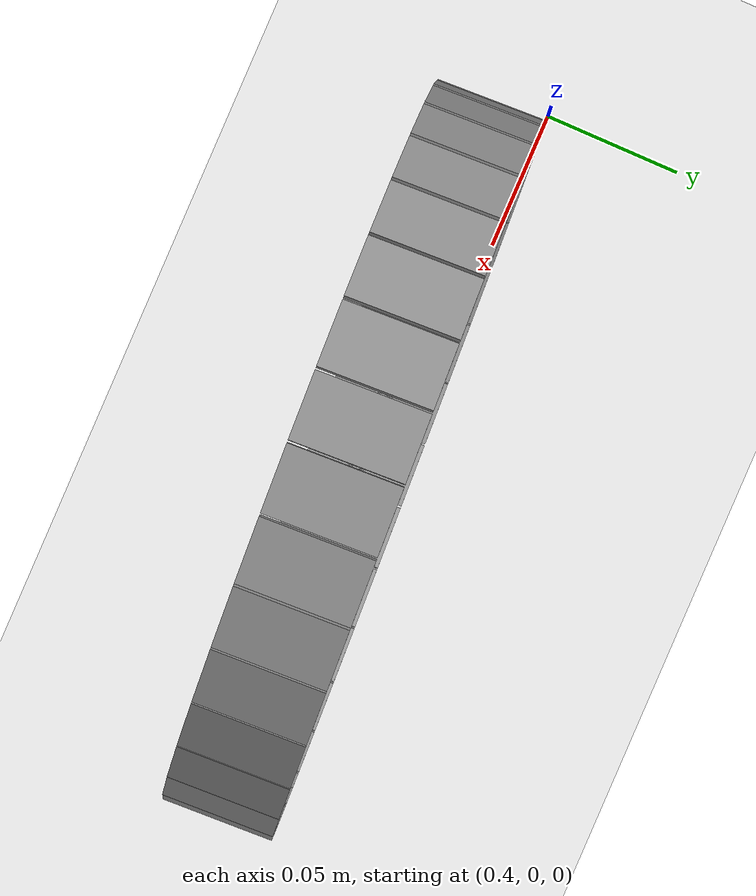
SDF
<sdf version="1.6">
 <world name="default">
  <model name="ground_plane">
   <static>1</static>
   <link name="link">
    <collision name="collision">
     <geometry><plane><normal>0 0 1</normal><size>100 100</size></plane></geometry>
     <surface><friction><ode><mu>100</mu><mu2>50</mu2></ode></friction></surface>
    </collision>
    <visual name="visual">
     <cast_shadows>0</cast_shadows>
     <geometry><plane><normal>0 0 1</normal><size>100 100</size></plane></geometry>
     <material>
      <script><uri>file://media/materials/scripts/gazebo.material</uri><name>Gazebo/Grey</name></script>
     </material>
    </visual>
   </link>
  </model>
  <model name="track_2">
   <static>0</static>
   <pose>0.539187 -0.014415 0.05516 -1.5696 0.043693 0.04388</pose>
   <link name="link_0">
    <pose>0.1309 0 0 -1.5708 0 1.5708</pose>
    <inertial>
     <mass>1</mass>
     <inertia>
      <ixx>0.166667</ixx>
      <ixy>0</ixy>
      <ixz>0</ixz>
      <iyy>0.166667</iyy>
      <iyz>0</iyz>
      <izz>0.166667</izz>
     </inertia>
    </inertial>
    <visual name="visual">
     <geometry><mesh><uri>model://track_thread/meshes/CP1.dae</uri><scale>1 1 1</scale></mesh></geometry>
     <material>
      <lighting>1</lighting>
      <script><uri>file://media/materials/scripts/gazebo.material</uri><name>Gazebo/Grey</name></script>
      <ambient>0.3 0.3 0.3 1</ambient>
      <diffuse>0.7 0.7 0.7 1</diffuse>
      <specular>0.01 0.01 0.01 1</specular>
      <emissive>0 0 0 1</emissive>
      <shader type="vertex"><normal_map>__default__</normal_map></shader>
     </material>
    </visual>
    <collision name="collision">
     <geometry><mesh><uri>model://track_thread/meshes/CP1.dae</uri><scale>1 1 1</scale></mesh></geometry>
    </collision>
   </link>
   <link name="link_1">
    <pose>0.1285 0.0248 0 -1.5708 -0 1.7612</pose>
    <inertial>
     <mass>1</mass>
     <inertia>
      <ixx>0.166667</ixx>
      <ixy>0</ixy>
      <ixz>0</ixz>
      <iyy>0.166667</iyy>
      <iyz>0</iyz>
      <izz>0.166667</izz>
     </inertia>
    </inertial>
    <visual name="visual">
     <geometry><mesh><uri>model://track_thread/meshes/CP1.dae</uri><scale>1 1 1</scale></mesh></geometry>
     <material>
      <lighting>1</lighting>
      <script><uri>file://media/materials/scripts/gazebo.material</uri><name>Gazebo/Grey</name></script>
      <ambient>0.3 0.3 0.3 1</ambient>
      <diffuse>0.7 0.7 0.7 1</diffuse>
      <specular>0.01 0.01 0.01 1</specular>
      <emissive>0 0 0 1</emissive>
      <shader type="vertex"><normal_map>__default__</normal_map></shader>
     </material>
    </visual>
    <collision name="collision">
     <geometry><mesh><uri>model://track_thread/meshes/CP1.dae</uri><scale>1 1 1</scale></mesh></geometry>
    </collision>
   </link>
   <link name="link_2">
    <pose>0.1215 0.0487 0 -1.5708 -0 1.9516</pose>
    <inertial>
     <mass>1</mass>
     <inertia>
      <ixx>0.166667</ixx>
      <ixy>0</ixy>
      <ixz>0</ixz>
      <iyy>0.166667</iyy>
      <iyz>0</iyz>
      <izz>0.166667</izz>
     </inertia>
    </inertial>
    <visual name="visual">
     <geometry><mesh><uri>model://track_thread/meshes/CP1.dae</uri><scale>1 1 1</scale></mesh></geometry>
     <material>
      <lighting>1</lighting>
      <script><uri>file://media/materials/scripts/gazebo.material</uri><name>Gazebo/Grey</name></script>
      <ambient>0.3 0.3 0.3 1</ambient>
      <diffuse>0.7 0.7 0.7 1</diffuse>
      <specular>0.01 0.01 0.01 1</specular>
      <emissive>0 0 0 1</emissive>
      <shader type="vertex"><normal_map>__default__</normal_map></shader>
     </material>
    </visual>
    <collision name="collision">
     <geometry><mesh><uri>model://track_thread/meshes/CP1.dae</uri><scale>1 1 1</scale></mesh></geometry>
    </collision>
   </link>
   <link name="link_3">
    <pose>0.1101 0.0708 0 -1.5708 -0 2.142</pose>
    <inertial>
     <mass>1</mass>
     <inertia>
      <ixx>0.166667</ixx>
      <ixy>0</ixy>
      <ixz>0</ixz>
      <iyy>0.166667</iyy>
      <iyz>0</iyz>
      <izz>0.166667</izz>
     </inertia>
    </inertial>
    <visual name="visual">
     <geometry><mesh><uri>model://track_thread/meshes/CP1.dae</uri><scale>1 1 1</scale></mesh></geometry>
     <material>
      <lighting>1</lighting>
      <script><uri>file://media/materials/scripts/gazebo.material</uri><name>Gazebo/Grey</name></script>
      <ambient>0.3 0.3 0.3 1</ambient>
      <diffuse>0.7 0.7 0.7 1</diffuse>
      <specular>0.01 0.01 0.01 1</specular>
      <emissive>0 0 0 1</emissive>
      <shader type="vertex"><normal_map>__default__</normal_map></shader>
     </material>
    </visual>
    <collision name="collision">
     <geometry><mesh><uri>model://track_thread/meshes/CP1.dae</uri><scale>1 1 1</scale></mesh></geometry>
    </collision>
   </link>
   <link name="link_4">
    <pose>0.0947 0.0903 0 -1.5708 -0 2.3324</pose>
    <inertial>
     <mass>1</mass>
     <inertia>
      <ixx>0.166667</ixx>
      <ixy>0</ixy>
      <ixz>0</ixz>
      <iyy>0.166667</iyy>
      <iyz>0</iyz>
      <izz>0.166667</izz>
     </inertia>
    </inertial>
    <visual name="visual">
     <geometry><mesh><uri>model://track_thread/meshes/CP1.dae</uri><scale>1 1 1</scale></mesh></geometry>
     <material>
      <lighting>1</lighting>
      <script><uri>file://media/materials/scripts/gazebo.material</uri><name>Gazebo/Grey</name></script>
      <ambient>0.3 0.3 0.3 1</ambient>
      <diffuse>0.7 0.7 0.7 1</diffuse>
      <specular>0.01 0.01 0.01 1</specular>
      <emissive>0 0 0 1</emissive>
      <shader type="vertex"><normal_map>__default__</normal_map></shader>
     </material>
    </visual>
    <collision name="collision">
     <geometry><mesh><uri>model://track_thread/meshes/CP1.dae</uri><scale>1 1 1</scale></mesh></geometry>
    </collision>
   </link>
   <link name="link_5">
    <pose>0.0759 0.1066 0 -1.5708 0 2.5228</pose>
    <inertial>
     <mass>1</mass>
     <inertia>
      <ixx>0.166667</ixx>
      <ixy>0</ixy>
      <ixz>0</ixz>
      <iyy>0.166667</iyy>
      <iyz>0</iyz>
      <izz>0.166667</izz>
     </inertia>
    </inertial>
    <visual name="visual">
     <geometry><mesh><uri>model://track_thread/meshes/CP1.dae</uri><scale>1 1 1</scale></mesh></geometry>
     <material>
      <lighting>1</lighting>
      <script><uri>file://media/materials/scripts/gazebo.material</uri><name>Gazebo/Grey</name></script>
      <ambient>0.3 0.3 0.3 1</ambient>
      <diffuse>0.7 0.7 0.7 1</diffuse>
      <specular>0.01 0.01 0.01 1</specular>
      <emissive>0 0 0 1</emissive>
      <shader type="vertex"><normal_map>__default__</normal_map></shader>
     </material>
    </visual>
    <collision name="collision">
     <geometry><mesh><uri>model://track_thread/meshes/CP1.dae</uri><scale>1 1 1</scale></mesh></geometry>
    </collision>
   </link>
   <link name="link_6">
    <pose>0.0544 0.1191 0 -1.5708 -0 2.7132</pose>
    <inertial>
     <mass>1</mass>
     <inertia>
      <ixx>0.166667</ixx>
      <ixy>0</ixy>
      <ixz>0</ixz>
      <iyy>0.166667</iyy>
      <iyz>0</iyz>
      <izz>0.166667</izz>
     </inertia>
    </inertial>
    <visual name="visual">
     <geometry><mesh><uri>model://track_thread/meshes/CP1.dae</uri><scale>1 1 1</scale></mesh></geometry>
     <material>
      <lighting>1</lighting>
      <script><uri>file://media/materials/scripts/gazebo.material</uri><name>Gazebo/Grey</name></script>
      <ambient>0.3 0.3 0.3 1</ambient>
      <diffuse>0.7 0.7 0.7 1</diffuse>
      <specular>0.01 0.01 0.01 1</specular>
      <emissive>0 0 0 1</emissive>
      <shader type="vertex"><normal_map>__default__</normal_map></shader>
     </material>
    </visual>
    <collision name="collision">
     <geometry><mesh><uri>model://track_thread/meshes/CP1.dae</uri><scale>1 1 1</scale></mesh></geometry>
    </collision>
   </link>
   <link name="link_7">
    <pose>0.0309 0.1272 0 -1.5708 -0 2.9036</pose>
    <inertial>
     <mass>1</mass>
     <inertia>
      <ixx>0.166667</ixx>
      <ixy>0</ixy>
      <ixz>0</ixz>
      <iyy>0.166667</iyy>
      <iyz>0</iyz>
      <izz>0.166667</izz>
     </inertia>
    </inertial>
    <visual name="visual">
     <geometry><mesh><uri>model://track_thread/meshes/CP1.dae</uri><scale>1 1 1</scale></mesh></geometry>
     <material>
      <lighting>1</lighting>
      <script><uri>file://media/materials/scripts/gazebo.material</uri><name>Gazebo/Grey</name></script>
      <ambient>0.3 0.3 0.3 1</ambient>
      <diffuse>0.7 0.7 0.7 1</diffuse>
      <specular>0.01 0.01 0.01 1</specular>
      <emissive>0 0 0 1</emissive>
      <shader type="vertex"><normal_map>__default__</normal_map></shader>
     </material>
    </visual>
    <collision name="collision">
     <geometry><mesh><uri>model://track_thread/meshes/CP1.dae</uri><scale>1 1 1</scale></mesh></geometry>
    </collision>
   </link>
   <link name="link_8">
    <pose>0.0062 0.1308 0 -1.5708 -0 3.094</pose>
    <inertial>
     <mass>1</mass>
     <inertia>
      <ixx>0.166667</ixx>
      <ixy>0</ixy>
      <ixz>0</ixz>
      <iyy>0.166667</iyy>
      <iyz>0</iyz>
      <izz>0.166667</izz>
     </inertia>
    </inertial>
    <visual name="visual">
     <geometry><mesh><uri>model://track_thread/meshes/CP1.dae</uri><scale>1 1 1</scale></mesh></geometry>
     <material>
      <lighting>1</lighting>
      <script><uri>file://media/materials/scripts/gazebo.material</uri><name>Gazebo/Grey</name></script>
      <ambient>0.3 0.3 0.3 1</ambient>
      <diffuse>0.7 0.7 0.7 1</diffuse>
      <specular>0.01 0.01 0.01 1</specular>
      <emissive>0 0 0 1</emissive>
      <shader type="vertex"><normal_map>__default__</normal_map></shader>
     </material>
    </visual>
    <collision name="collision">
     <geometry><mesh><uri>model://track_thread/meshes/CP1.dae</uri><scale>1 1 1</scale></mesh></geometry>
    </collision>
   </link>
   <link name="link_9">
    <pose>-0.0186 0.1296 0 -1.5708 0 -2.99878</pose>
    <inertial>
     <mass>1</mass>
     <inertia>
      <ixx>0.166667</ixx>
      <ixy>0</ixy>
      <ixz>0</ixz>
      <iyy>0.166667</iyy>
      <iyz>0</iyz>
      <izz>0.166667</izz>
     </inertia>
    </inertial>
    <visual name="visual">
     <geometry><mesh><uri>model://track_thread/meshes/CP1.dae</uri><scale>1 1 1</scale></mesh></geometry>
     <material>
      <lighting>1</lighting>
      <script><uri>file://media/materials/scripts/gazebo.material</uri><name>Gazebo/Grey</name></script>
      <ambient>0.3 0.3 0.3 1</ambient>
      <diffuse>0.7 0.7 0.7 1</diffuse>
      <specular>0.01 0.01 0.01 1</specular>
      <emissive>0 0 0 1</emissive>
      <shader type="vertex"><normal_map>__default__</normal_map></shader>
     </material>
    </visual>
    <collision name="collision">
     <geometry><mesh><uri>model://track_thread/meshes/CP1.dae</uri><scale>1 1 1</scale></mesh></geometry>
    </collision>
   </link>
   <link name="link_10">
    <pose>-0.0428 0.1237 0 -1.5708 -0 -2.80838</pose>
    <inertial>
     <mass>1</mass>
     <inertia>
      <ixx>0.166667</ixx>
      <ixy>0</ixy>
      <ixz>0</ixz>
      <iyy>0.166667</iyy>
      <iyz>0</iyz>
      <izz>0.166667</izz>
     </inertia>
    </inertial>
    <visual name="visual">
     <geometry><mesh><uri>model://track_thread/meshes/CP1.dae</uri><scale>1 1 1</scale></mesh></geometry>
     <material>
      <lighting>1</lighting>
      <script><uri>file://media/materials/scripts/gazebo.material</uri><name>Gazebo/Grey</name></script>
      <ambient>0.3 0.3 0.3 1</ambient>
      <diffuse>0.7 0.7 0.7 1</diffuse>
      <specular>0.01 0.01 0.01 1</specular>
      <emissive>0 0 0 1</emissive>
      <shader type="vertex"><normal_map>__default__</normal_map></shader>
     </material>
    </visual>
    <collision name="collision">
     <geometry><mesh><uri>model://track_thread/meshes/CP1.dae</uri><scale>1 1 1</scale></mesh></geometry>
    </collision>
   </link>
   <link name="link_11">
    <pose>-0.0655 0.1134 0 -1.5708 -0 -2.61799</pose>
    <inertial>
     <mass>1</mass>
     <inertia>
      <ixx>0.166667</ixx>
      <ixy>0</ixy>
      <ixz>0</ixz>
      <iyy>0.166667</iyy>
      <iyz>0</iyz>
      <izz>0.166667</izz>
     </inertia>
    </inertial>
    <visual name="visual">
     <geometry><mesh><uri>model://track_thread/meshes/CP1.dae</uri><scale>1 1 1</scale></mesh></geometry>
     <material>
      <lighting>1</lighting>
      <script><uri>file://media/materials/scripts/gazebo.material</uri><name>Gazebo/Grey</name></script>
      <ambient>0.3 0.3 0.3 1</ambient>
      <diffuse>0.7 0.7 0.7 1</diffuse>
      <specular>0.01 0.01 0.01 1</specular>
      <emissive>0 0 0 1</emissive>
      <shader type="vertex"><normal_map>__default__</normal_map></shader>
     </material>
    </visual>
    <collision name="collision">
     <geometry><mesh><uri>model://track_thread/meshes/CP1.dae</uri><scale>1 1 1</scale></mesh></geometry>
    </collision>
   </link>
   <link name="link_12">
    <pose>-0.0857 0.0989 0 -1.5708 -0 -2.42759</pose>
    <inertial>
     <mass>1</mass>
     <inertia>
      <ixx>0.166667</ixx>
      <ixy>0</ixy>
      <ixz>0</ixz>
      <iyy>0.166667</iyy>
      <iyz>0</iyz>
      <izz>0.166667</izz>
     </inertia>
    </inertial>
    <visual name="visual">
     <geometry><mesh><uri>model://track_thread/meshes/CP1.dae</uri><scale>1 1 1</scale></mesh></geometry>
     <material>
      <lighting>1</lighting>
      <script><uri>file://media/materials/scripts/gazebo.material</uri><name>Gazebo/Grey</name></script>
      <ambient>0.3 0.3 0.3 1</ambient>
      <diffuse>0.7 0.7 0.7 1</diffuse>
      <specular>0.01 0.01 0.01 1</specular>
      <emissive>0 0 0 1</emissive>
      <shader type="vertex"><normal_map>__default__</normal_map></shader>
     </material>
    </visual>
    <collision name="collision">
     <geometry><mesh><uri>model://track_thread/meshes/CP1.dae</uri><scale>1 1 1</scale></mesh></geometry>
    </collision>
   </link>
   <link name="link_13">
    <pose>-0.1029 0.0809 0 -1.5708 -0 -2.23719</pose>
    <inertial>
     <mass>1</mass>
     <inertia>
      <ixx>0.166667</ixx>
      <ixy>0</ixy>
      <ixz>0</ixz>
      <iyy>0.166667</iyy>
      <iyz>0</iyz>
      <izz>0.166667</izz>
     </inertia>
    </inertial>
    <visual name="visual">
     <geometry><mesh><uri>model://track_thread/meshes/CP1.dae</uri><scale>1 1 1</scale></mesh></geometry>
     <material>
      <lighting>1</lighting>
      <script><uri>file://media/materials/scripts/gazebo.material</uri><name>Gazebo/Grey</name></script>
      <ambient>0.3 0.3 0.3 1</ambient>
      <diffuse>0.7 0.7 0.7 1</diffuse>
      <specular>0.01 0.01 0.01 1</specular>
      <emissive>0 0 0 1</emissive>
      <shader type="vertex"><normal_map>__default__</normal_map></shader>
     </material>
    </visual>
    <collision name="collision">
     <geometry><mesh><uri>model://track_thread/meshes/CP1.dae</uri><scale>1 1 1</scale></mesh></geometry>
    </collision>
   </link>
   <link name="link_14">
    <pose>-0.1164 0.06 0 -1.5708 -0 -2.04678</pose>
    <inertial>
     <mass>1</mass>
     <inertia>
      <ixx>0.166667</ixx>
      <ixy>0</ixy>
      <ixz>0</ixz>
      <iyy>0.166667</iyy>
      <iyz>0</iyz>
      <izz>0.166667</izz>
     </inertia>
    </inertial>
    <visual name="visual">
     <geometry><mesh><uri>model://track_thread/meshes/CP1.dae</uri><scale>1 1 1</scale></mesh></geometry>
     <material>
      <lighting>1</lighting>
      <script><uri>file://media/materials/scripts/gazebo.material</uri><name>Gazebo/Grey</name></script>
      <ambient>0.3 0.3 0.3 1</ambient>
      <diffuse>0.7 0.7 0.7 1</diffuse>
      <specular>0.01 0.01 0.01 1</specular>
      <emissive>0 0 0 1</emissive>
      <shader type="vertex"><normal_map>__default__</normal_map></shader>
     </material>
    </visual>
    <collision name="collision">
     <geometry><mesh><uri>model://track_thread/meshes/CP1.dae</uri><scale>1 1 1</scale></mesh></geometry>
    </collision>
   </link>
   <link name="link_15">
    <pose>-0.1256 0.0369 0 -1.5708 -0 -1.85638</pose>
    <inertial>
     <mass>1</mass>
     <inertia>
      <ixx>0.166667</ixx>
      <ixy>0</ixy>
      <ixz>0</ixz>
      <iyy>0.166667</iyy>
      <iyz>0</iyz>
      <izz>0.166667</izz>
     </inertia>
    </inertial>
    <visual name="visual">
     <geometry><mesh><uri>model://track_thread/meshes/CP1.dae</uri><scale>1 1 1</scale></mesh></geometry>
     <material>
      <lighting>1</lighting>
      <script><uri>file://media/materials/scripts/gazebo.material</uri><name>Gazebo/Grey</name></script>
      <ambient>0.3 0.3 0.3 1</ambient>
      <diffuse>0.7 0.7 0.7 1</diffuse>
      <specular>0.01 0.01 0.01 1</specular>
      <emissive>0 0 0 1</emissive>
      <shader type="vertex"><normal_map>__default__</normal_map></shader>
     </material>
    </visual>
    <collision name="collision">
     <geometry><mesh><uri>model://track_thread/meshes/CP1.dae</uri><scale>1 1 1</scale></mesh></geometry>
    </collision>
   </link>
   <link name="link_16">
    <pose>-0.1303 0.0124 0 -1.5708 0 -1.66599</pose>
    <inertial>
     <mass>1</mass>
     <inertia>
      <ixx>0.166667</ixx>
      <ixy>0</ixy>
      <ixz>0</ixz>
      <iyy>0.166667</iyy>
      <iyz>0</iyz>
      <izz>0.166667</izz>
     </inertia>
    </inertial>
    <visual name="visual">
     <geometry><mesh><uri>model://track_thread/meshes/CP1.dae</uri><scale>1 1 1</scale></mesh></geometry>
     <material>
      <lighting>1</lighting>
      <script><uri>file://media/materials/scripts/gazebo.material</uri><name>Gazebo/Grey</name></script>
      <ambient>0.3 0.3 0.3 1</ambient>
      <diffuse>0.7 0.7 0.7 1</diffuse>
      <specular>0.01 0.01 0.01 1</specular>
      <emissive>0 0 0 1</emissive>
      <shader type="vertex"><normal_map>__default__</normal_map></shader>
     </material>
    </visual>
    <collision name="collision">
     <geometry><mesh><uri>model://track_thread/meshes/CP1.dae</uri><scale>1 1 1</scale></mesh></geometry>
    </collision>
   </link>
   <link name="link_17">
    <pose>-0.1303 -0.0124 0 -1.5708 0 -1.47558</pose>
    <inertial>
     <mass>1</mass>
     <inertia>
      <ixx>0.166667</ixx>
      <ixy>0</ixy>
      <ixz>0</ixz>
      <iyy>0.166667</iyy>
      <iyz>0</iyz>
      <izz>0.166667</izz>
     </inertia>
    </inertial>
    <visual name="visual">
     <geometry><mesh><uri>model://track_thread/meshes/CP1.dae</uri><scale>1 1 1</scale></mesh></geometry>
     <material>
      <lighting>1</lighting>
      <script><uri>file://media/materials/scripts/gazebo.material</uri><name>Gazebo/Grey</name></script>
      <ambient>0.3 0.3 0.3 1</ambient>
      <diffuse>0.7 0.7 0.7 1</diffuse>
      <specular>0.01 0.01 0.01 1</specular>
      <emissive>0 0 0 1</emissive>
      <shader type="vertex"><normal_map>__default__</normal_map></shader>
     </material>
    </visual>
    <collision name="collision">
     <geometry><mesh><uri>model://track_thread/meshes/CP1.dae</uri><scale>1 1 1</scale></mesh></geometry>
    </collision>
   </link>
   <link name="link_18">
    <pose>-0.1256 -0.0369 0 -1.5708 -0 -1.28519</pose>
    <inertial>
     <mass>1</mass>
     <inertia>
      <ixx>0.166667</ixx>
      <ixy>0</ixy>
      <ixz>0</ixz>
      <iyy>0.166667</iyy>
      <iyz>0</iyz>
      <izz>0.166667</izz>
     </inertia>
    </inertial>
    <visual name="visual">
     <geometry><mesh><uri>model://track_thread/meshes/CP1.dae</uri><scale>1 1 1</scale></mesh></geometry>
     <material>
      <lighting>1</lighting>
      <script><uri>file://media/materials/scripts/gazebo.material</uri><name>Gazebo/Grey</name></script>
      <ambient>0.3 0.3 0.3 1</ambient>
      <diffuse>0.7 0.7 0.7 1</diffuse>
      <specular>0.01 0.01 0.01 1</specular>
      <emissive>0 0 0 1</emissive>
      <shader type="vertex"><normal_map>__default__</normal_map></shader>
     </material>
    </visual>
    <collision name="collision">
     <geometry><mesh><uri>model://track_thread/meshes/CP1.dae</uri><scale>1 1 1</scale></mesh></geometry>
    </collision>
   </link>
   <link name="link_19">
    <pose>-0.1164 -0.06 0 -1.5708 -0 -1.09478</pose>
    <inertial>
     <mass>1</mass>
     <inertia>
      <ixx>0.166667</ixx>
      <ixy>0</ixy>
      <ixz>0</ixz>
      <iyy>0.166667</iyy>
      <iyz>0</iyz>
      <izz>0.166667</izz>
     </inertia>
    </inertial>
    <visual name="visual">
     <geometry><mesh><uri>model://track_thread/meshes/CP1.dae</uri><scale>1 1 1</scale></mesh></geometry>
     <material>
      <lighting>1</lighting>
      <script><uri>file://media/materials/scripts/gazebo.material</uri><name>Gazebo/Grey</name></script>
      <ambient>0.3 0.3 0.3 1</ambient>
      <diffuse>0.7 0.7 0.7 1</diffuse>
      <specular>0.01 0.01 0.01 1</specular>
      <emissive>0 0 0 1</emissive>
      <shader type="vertex"><normal_map>__default__</normal_map></shader>
     </material>
    </visual>
    <collision name="collision">
     <geometry><mesh><uri>model://track_thread/meshes/CP1.dae</uri><scale>1 1 1</scale></mesh></geometry>
    </collision>
   </link>
   <link name="link_20">
    <pose>-0.1029 -0.0809 0 -1.5708 -0 -0.904385</pose>
    <inertial>
     <mass>1</mass>
     <inertia>
      <ixx>0.166667</ixx>
      <ixy>0</ixy>
      <ixz>0</ixz>
      <iyy>0.166667</iyy>
      <iyz>0</iyz>
      <izz>0.166667</izz>
     </inertia>
    </inertial>
    <visual name="visual">
     <geometry><mesh><uri>model://track_thread/meshes/CP1.dae</uri><scale>1 1 1</scale></mesh></geometry>
     <material>
      <lighting>1</lighting>
      <script><uri>file://media/materials/scripts/gazebo.material</uri><name>Gazebo/Grey</name></script>
      <ambient>0.3 0.3 0.3 1</ambient>
      <diffuse>0.7 0.7 0.7 1</diffuse>
      <specular>0.01 0.01 0.01 1</specular>
      <emissive>0 0 0 1</emissive>
      <shader type="vertex"><normal_map>__default__</normal_map></shader>
     </material>
    </visual>
    <collision name="collision">
     <geometry><mesh><uri>model://track_thread/meshes/CP1.dae</uri><scale>1 1 1</scale></mesh></geometry>
    </collision>
   </link>
   <link name="link_21">
    <pose>-0.0857 -0.0989 0 -1.5708 -0 -0.713985</pose>
    <inertial>
     <mass>1</mass>
     <inertia>
      <ixx>0.166667</ixx>
      <ixy>0</ixy>
      <ixz>0</ixz>
      <iyy>0.166667</iyy>
      <iyz>0</iyz>
      <izz>0.166667</izz>
     </inertia>
    </inertial>
    <visual name="visual">
     <geometry><mesh><uri>model://track_thread/meshes/CP1.dae</uri><scale>1 1 1</scale></mesh></geometry>
     <material>
      <lighting>1</lighting>
      <script><uri>file://media/materials/scripts/gazebo.material</uri><name>Gazebo/Grey</name></script>
      <ambient>0.3 0.3 0.3 1</ambient>
      <diffuse>0.7 0.7 0.7 1</diffuse>
      <specular>0.01 0.01 0.01 1</specular>
      <emissive>0 0 0 1</emissive>
      <shader type="vertex"><normal_map>__default__</normal_map></shader>
     </material>
    </visual>
    <collision name="collision">
     <geometry><mesh><uri>model://track_thread/meshes/CP1.dae</uri><scale>1 1 1</scale></mesh></geometry>
    </collision>
   </link>
   <link name="link_22">
    <pose>-0.0655 -0.1134 0 -1.5708 -0 -0.523585</pose>
    <inertial>
     <mass>1</mass>
     <inertia>
      <ixx>0.166667</ixx>
      <ixy>0</ixy>
      <ixz>0</ixz>
      <iyy>0.166667</iyy>
      <iyz>0</iyz>
      <izz>0.166667</izz>
     </inertia>
    </inertial>
    <visual name="visual">
     <geometry><mesh><uri>model://track_thread/meshes/CP1.dae</uri><scale>1 1 1</scale></mesh></geometry>
     <material>
      <lighting>1</lighting>
      <script><uri>file://media/materials/scripts/gazebo.material</uri><name>Gazebo/Grey</name></script>
      <ambient>0.3 0.3 0.3 1</ambient>
      <diffuse>0.7 0.7 0.7 1</diffuse>
      <specular>0.01 0.01 0.01 1</specular>
      <emissive>0 0 0 1</emissive>
      <shader type="vertex"><normal_map>__default__</normal_map></shader>
     </material>
    </visual>
    <collision name="collision">
     <geometry><mesh><uri>model://track_thread/meshes/CP1.dae</uri><scale>1 1 1</scale></mesh></geometry>
    </collision>
   </link>
   <link name="link_23">
    <pose>-0.0428 -0.1237 0 -1.5708 -0 -0.333185</pose>
    <inertial>
     <mass>1</mass>
     <inertia>
      <ixx>0.166667</ixx>
      <ixy>0</ixy>
      <ixz>0</ixz>
      <iyy>0.166667</iyy>
      <iyz>0</iyz>
      <izz>0.166667</izz>
     </inertia>
    </inertial>
    <visual name="visual">
     <geometry><mesh><uri>model://track_thread/meshes/CP1.dae</uri><scale>1 1 1</scale></mesh></geometry>
     <material>
      <lighting>1</lighting>
      <script><uri>file://media/materials/scripts/gazebo.material</uri><name>Gazebo/Grey</name></script>
      <ambient>0.3 0.3 0.3 1</ambient>
      <diffuse>0.7 0.7 0.7 1</diffuse>
      <specular>0.01 0.01 0.01 1</specular>
      <emissive>0 0 0 1</emissive>
      <shader type="vertex"><normal_map>__default__</normal_map></shader>
     </material>
    </visual>
    <collision name="collision">
     <geometry><mesh><uri>model://track_thread/meshes/CP1.dae</uri><scale>1 1 1</scale></mesh></geometry>
    </collision>
   </link>
   <link name="link_24">
    <pose>-0.0186 -0.1296 0 -1.5708 0 -0.142785</pose>
    <inertial>
     <mass>1</mass>
     <inertia>
      <ixx>0.166667</ixx>
      <ixy>0</ixy>
      <ixz>0</ixz>
      <iyy>0.166667</iyy>
      <iyz>0</iyz>
      <izz>0.166667</izz>
     </inertia>
    </inertial>
    <visual name="visual">
     <geometry><mesh><uri>model://track_thread/meshes/CP1.dae</uri><scale>1 1 1</scale></mesh></geometry>
     <material>
      <lighting>1</lighting>
      <script><uri>file://media/materials/scripts/gazebo.material</uri><name>Gazebo/Grey</name></script>
      <ambient>0.3 0.3 0.3 1</ambient>
      <diffuse>0.7 0.7 0.7 1</diffuse>
      <specular>0.01 0.01 0.01 1</specular>
      <emissive>0 0 0 1</emissive>
      <shader type="vertex"><normal_map>__default__</normal_map></shader>
     </material>
    </visual>
    <collision name="collision">
     <geometry><mesh><uri>model://track_thread/meshes/CP1.dae</uri><scale>1 1 1</scale></mesh></geometry>
    </collision>
   </link>
   <link name="link_25">
    <pose>0.0062 -0.1308 0 -1.5708 -0 0.047615</pose>
    <inertial>
     <mass>1</mass>
     <inertia>
      <ixx>0.166667</ixx>
      <ixy>0</ixy>
      <ixz>0</ixz>
      <iyy>0.166667</iyy>
      <iyz>0</iyz>
      <izz>0.166667</izz>
     </inertia>
    </inertial>
    <visual name="visual">
     <geometry><mesh><uri>model://track_thread/meshes/CP1.dae</uri><scale>1 1 1</scale></mesh></geometry>
     <material>
      <lighting>1</lighting>
      <script><uri>file://media/materials/scripts/gazebo.material</uri><name>Gazebo/Grey</name></script>
      <ambient>0.3 0.3 0.3 1</ambient>
      <diffuse>0.7 0.7 0.7 1</diffuse>
      <specular>0.01 0.01 0.01 1</specular>
      <emissive>0 0 0 1</emissive>
      <shader type="vertex"><normal_map>__default__</normal_map></shader>
     </material>
    </visual>
    <collision name="collision">
     <geometry><mesh><uri>model://track_thread/meshes/CP1.dae</uri><scale>1 1 1</scale></mesh></geometry>
    </collision>
   </link>
   <link name="link_26">
    <pose>0.0309 -0.1272 0 -1.5708 -0 0.238015</pose>
    <inertial>
     <mass>1</mass>
     <inertia>
      <ixx>0.166667</ixx>
      <ixy>0</ixy>
      <ixz>0</ixz>
      <iyy>0.166667</iyy>
      <iyz>0</iyz>
      <izz>0.166667</izz>
     </inertia>
    </inertial>
    <visual name="visual">
     <geometry><mesh><uri>model://track_thread/meshes/CP1.dae</uri><scale>1 1 1</scale></mesh></geometry>
     <material>
      <lighting>1</lighting>
      <script><uri>file://media/materials/scripts/gazebo.material</uri><name>Gazebo/Grey</name></script>
      <ambient>0.3 0.3 0.3 1</ambient>
      <diffuse>0.7 0.7 0.7 1</diffuse>
      <specular>0.01 0.01 0.01 1</specular>
      <emissive>0 0 0 1</emissive>
      <shader type="vertex"><normal_map>__default__</normal_map></shader>
     </material>
    </visual>
    <collision name="collision">
     <geometry><mesh><uri>model://track_thread/meshes/CP1.dae</uri><scale>1 1 1</scale></mesh></geometry>
    </collision>
   </link>
   <link name="link_27">
    <pose>0.0544 -0.1191 0 -1.5708 0 0.428415</pose>
    <inertial>
     <mass>1</mass>
     <inertia>
      <ixx>0.166667</ixx>
      <ixy>0</ixy>
      <ixz>0</ixz>
      <iyy>0.166667</iyy>
      <iyz>0</iyz>
      <izz>0.166667</izz>
     </inertia>
    </inertial>
    <visual name="visual">
     <geometry><mesh><uri>model://track_thread/meshes/CP1.dae</uri><scale>1 1 1</scale></mesh></geometry>
     <material>
      <lighting>1</lighting>
      <script><uri>file://media/materials/scripts/gazebo.material</uri><name>Gazebo/Grey</name></script>
      <ambient>0.3 0.3 0.3 1</ambient>
      <diffuse>0.7 0.7 0.7 1</diffuse>
      <specular>0.01 0.01 0.01 1</specular>
      <emissive>0 0 0 1</emissive>
      <shader type="vertex"><normal_map>__default__</normal_map></shader>
     </material>
    </visual>
    <collision name="collision">
     <geometry><mesh><uri>model://track_thread/meshes/CP1.dae</uri><scale>1 1 1</scale></mesh></geometry>
    </collision>
   </link>
   <link name="link_28">
    <pose>0.0759 -0.1066 0 -1.5708 -0 0.618815</pose>
    <inertial>
     <mass>1</mass>
     <inertia>
      <ixx>0.166667</ixx>
      <ixy>0</ixy>
      <ixz>0</ixz>
      <iyy>0.166667</iyy>
      <iyz>0</iyz>
      <izz>0.166667</izz>
     </inertia>
    </inertial>
    <visual name="visual">
     <geometry><mesh><uri>model://track_thread/meshes/CP1.dae</uri><scale>1 1 1</scale></mesh></geometry>
     <material>
      <lighting>1</lighting>
      <script><uri>file://media/materials/scripts/gazebo.material</uri><name>Gazebo/Grey</name></script>
      <ambient>0.3 0.3 0.3 1</ambient>
      <diffuse>0.7 0.7 0.7 1</diffuse>
      <specular>0.01 0.01 0.01 1</specular>
      <emissive>0 0 0 1</emissive>
      <shader type="vertex"><normal_map>__default__</normal_map></shader>
     </material>
    </visual>
    <collision name="collision">
     <geometry><mesh><uri>model://track_thread/meshes/CP1.dae</uri><scale>1 1 1</scale></mesh></geometry>
    </collision>
   </link>
   <link name="link_29">
    <pose>0.0947 -0.0903 0 -1.5708 -0 0.809215</pose>
    <inertial>
     <mass>1</mass>
     <inertia>
      <ixx>0.166667</ixx>
      <ixy>0</ixy>
      <ixz>0</ixz>
      <iyy>0.166667</iyy>
      <iyz>0</iyz>
      <izz>0.166667</izz>
     </inertia>
    </inertial>
    <visual name="visual">
     <geometry><mesh><uri>model://track_thread/meshes/CP1.dae</uri><scale>1 1 1</scale></mesh></geometry>
     <material>
      <lighting>1</lighting>
      <script><uri>file://media/materials/scripts/gazebo.material</uri><name>Gazebo/Grey</name></script>
      <ambient>0.3 0.3 0.3 1</ambient>
      <diffuse>0.7 0.7 0.7 1</diffuse>
      <specular>0.01 0.01 0.01 1</specular>
      <emissive>0 0 0 1</emissive>
      <shader type="vertex"><normal_map>__default__</normal_map></shader>
     </material>
    </visual>
    <collision name="collision">
     <geometry><mesh><uri>model://track_thread/meshes/CP1.dae</uri><scale>1 1 1</scale></mesh></geometry>
    </collision>
   </link>
   <link name="link_30">
    <pose>0.1101 -0.0708 0 -1.5708 -0 0.999615</pose>
    <inertial>
     <mass>1</mass>
     <inertia>
      <ixx>0.166667</ixx>
      <ixy>0</ixy>
      <ixz>0</ixz>
      <iyy>0.166667</iyy>
      <iyz>0</iyz>
      <izz>0.166667</izz>
     </inertia>
    </inertial>
    <visual name="visual">
     <geometry><mesh><uri>model://track_thread/meshes/CP1.dae</uri><scale>1 1 1</scale></mesh></geometry>
     <material>
      <lighting>1</lighting>
      <script><uri>file://media/materials/scripts/gazebo.material</uri><name>Gazebo/Grey</name></script>
      <ambient>0.3 0.3 0.3 1</ambient>
      <diffuse>0.7 0.7 0.7 1</diffuse>
      <specular>0.01 0.01 0.01 1</specular>
      <emissive>0 0 0 1</emissive>
      <shader type="vertex"><normal_map>__default__</normal_map></shader>
     </material>
    </visual>
    <collision name="collision">
     <geometry><mesh><uri>model://track_thread/meshes/CP1.dae</uri><scale>1 1 1</scale></mesh></geometry>
    </collision>
   </link>
   <link name="link_31">
    <pose>0.1215 -0.0487 0 -1.5708 -0 1.19002</pose>
    <inertial>
     <mass>1</mass>
     <inertia>
      <ixx>0.166667</ixx>
      <ixy>0</ixy>
      <ixz>0</ixz>
      <iyy>0.166667</iyy>
      <iyz>0</iyz>
      <izz>0.166667</izz>
     </inertia>
    </inertial>
    <visual name="visual">
     <geometry><mesh><uri>model://track_thread/meshes/CP1.dae</uri><scale>1 1 1</scale></mesh></geometry>
     <material>
      <lighting>1</lighting>
      <script><uri>file://media/materials/scripts/gazebo.material</uri><name>Gazebo/Grey</name></script>
      <ambient>0.3 0.3 0.3 1</ambient>
      <diffuse>0.7 0.7 0.7 1</diffuse>
      <specular>0.01 0.01 0.01 1</specular>
      <emissive>0 0 0 1</emissive>
      <shader type="vertex"><normal_map>__default__</normal_map></shader>
     </material>
    </visual>
    <collision name="collision">
     <geometry><mesh><uri>model://track_thread/meshes/CP1.dae</uri><scale>1 1 1</scale></mesh></geometry>
    </collision>
   </link>
   <link name="link_32">
    <pose>0.1285 -0.0248 0 -1.5708 -0 1.38041</pose>
    <inertial>
     <mass>1</mass>
     <inertia>
      <ixx>0.166667</ixx>
      <ixy>0</ixy>
      <ixz>0</ixz>
      <iyy>0.166667</iyy>
      <iyz>0</iyz>
      <izz>0.166667</izz>
     </inertia>
    </inertial>
    <visual name="visual">
     <geometry><mesh><uri>model://track_thread/meshes/CP1.dae</uri><scale>1 1 1</scale></mesh></geometry>
     <material>
      <lighting>1</lighting>
      <script><uri>file://media/materials/scripts/gazebo.material</uri><name>Gazebo/Grey</name></script>
      <ambient>0.3 0.3 0.3 1</ambient>
      <diffuse>0.7 0.7 0.7 1</diffuse>
      <specular>0.01 0.01 0.01 1</specular>
      <emissive>0 0 0 1</emissive>
      <shader type="vertex"><normal_map>__default__</normal_map></shader>
     </material>
    </visual>
    <collision name="collision">
     <geometry><mesh><uri>model://track_thread/meshes/CP1.dae</uri><scale>1 1 1</scale></mesh></geometry>
    </collision>
   </link>
   <joint name="joint_0_1" type="revolute">
    <pose>0.0125 0 0 0 -0 0</pose>
    <child>link_0</child>
    <parent>link_1</parent>
    <axis>
     <limit><lower>-0.3</lower><upper>0.3</upper></limit>
     <xyz>0 1 0</xyz>
     <use_parent_model_frame>0</use_parent_model_frame>
     <dynamics><spring_reference>0</spring_reference><spring_stiffness>0</spring_stiffness></dynamics>
    </axis>
   </joint>
   <joint name="joint_1_2" type="revolute">
    <pose>0.0125 0 0 0 -0 0</pose>
    <child>link_1</child>
    <parent>link_2</parent>
    <axis>
     <limit><lower>-0.3</lower><upper>0.3</upper></limit>
     <xyz>0 1 0</xyz>
     <use_parent_model_frame>0</use_parent_model_frame>
     <dynamics><spring_reference>0</spring_reference><spring_stiffness>0</spring_stiffness></dynamics>
    </axis>
   </joint>
   <joint name="joint_2_3" type="revolute">
    <pose>0.0125 0 0 0 -0 0</pose>
    <child>link_2</child>
    <parent>link_3</parent>
    <axis>
     <limit><lower>-0.3</lower><upper>0.3</upper></limit>
     <xyz>0 1 0</xyz>
     <use_parent_model_frame>0</use_parent_model_frame>
     <dynamics><spring_reference>0</spring_reference><spring_stiffness>0</spring_stiffness></dynamics>
    </axis>
   </joint>
   <joint name="joint_3_4" type="revolute">
    <pose>0.0125 0 0 0 -0 0</pose>
    <child>link_3</child>
    <parent>link_4</parent>
    <axis>
     <limit><lower>-0.3</lower><upper>0.3</upper></limit>
     <xyz>0 1 0</xyz>
     <use_parent_model_frame>0</use_parent_model_frame>
     <dynamics><spring_reference>0</spring_reference><spring_stiffness>0</spring_stiffness></dynamics>
    </axis>
   </joint>
   <joint name="joint_4_5" type="revolute">
    <pose>0.0125 0 0 0 -0 0</pose>
    <child>link_4</child>
    <parent>link_5</parent>
    <axis>
     <limit><lower>-0.3</lower><upper>0.3</upper></limit>
     <xyz>0 1 0</xyz>
     <use_parent_model_frame>0</use_parent_model_frame>
     <dynamics><spring_reference>0</spring_reference><spring_stiffness>0</spring_stiffness></dynamics>
    </axis>
   </joint>
   <joint name="joint_5_6" type="revolute">
    <pose>0.0125 0 0 0 -0 0</pose>
    <child>link_5</child>
    <parent>link_6</parent>
    <axis>
     <limit><lower>-0.3</lower><upper>0.3</upper></limit>
     <xyz>0 1 0</xyz>
     <use_parent_model_frame>0</use_parent_model_frame>
     <dynamics><spring_reference>0</spring_reference><spring_stiffness>0</spring_stiffness></dynamics>
    </axis>
   </joint>
   <joint name="joint_6_7" type="revolute">
    <pose>0.0125 0 0 0 -0 0</pose>
    <child>link_6</child>
    <parent>link_7</parent>
    <axis>
     <limit><lower>-0.3</lower><upper>0.3</upper></limit>
     <xyz>0 1 0</xyz>
     <use_parent_model_frame>0</use_parent_model_frame>
     <dynamics><spring_reference>0</spring_reference><spring_stiffness>0</spring_stiffness></dynamics>
    </axis>
   </joint>
   <joint name="joint_7_8" type="revolute">
    <pose>0.0125 0 0 0 -0 0</pose>
    <child>link_7</child>
    <parent>link_8</parent>
    <axis>
     <limit><lower>-0.3</lower><upper>0.3</upper></limit>
     <xyz>0 1 0</xyz>
     <use_parent_model_frame>0</use_parent_model_frame>
     <dynamics><spring_reference>0</spring_reference><spring_stiffness>0</spring_stiffness></dynamics>
    </axis>
   </joint>
   <joint name="joint_8_9" type="revolute">
    <pose>0.0125 0 0 0 -0 0</pose>
    <child>link_8</child>
    <parent>link_9</parent>
    <axis>
     <limit><lower>-0.3</lower><upper>0.3</upper></limit>
     <xyz>0 1 0</xyz>
     <use_parent_model_frame>0</use_parent_model_frame>
     <dynamics><spring_reference>0</spring_reference><spring_stiffness>0</spring_stiffness></dynamics>
    </axis>
   </joint>
   <joint name="joint_9_10" type="revolute">
    <pose>0.0125 0 0 0 -0 0</pose>
    <child>link_9</child>
    <parent>link_10</parent>
    <axis>
     <limit><lower>-0.3</lower><upper>0.3</upper></limit>
     <xyz>0 1 0</xyz>
     <use_parent_model_frame>0</use_parent_model_frame>
     <dynamics><spring_reference>0</spring_reference><spring_stiffness>0</spring_stiffness></dynamics>
    </axis>
   </joint>
   <joint name="joint_10_11" type="revolute">
    <pose>0.0125 0 0 0 -0 0</pose>
    <child>link_10</child>
    <parent>link_11</parent>
    <axis>
     <limit><lower>-0.3</lower><upper>0.3</upper></limit>
     <xyz>0 1 0</xyz>
     <use_parent_model_frame>0</use_parent_model_frame>
     <dynamics><spring_reference>0</spring_reference><spring_stiffness>0</spring_stiffness></dynamics>
    </axis>
   </joint>
   <joint name="joint_11_12" type="revolute">
    <pose>0.0125 0 0 0 -0 0</pose>
    <child>link_11</child>
    <parent>link_12</parent>
    <axis>
     <limit><lower>-0.3</lower><upper>0.3</upper></limit>
     <xyz>0 1 0</xyz>
     <use_parent_model_frame>0</use_parent_model_frame>
     <dynamics><spring_reference>0</spring_reference><spring_stiffness>0</spring_stiffness></dynamics>
    </axis>
   </joint>
   <joint name="joint_12_13" type="revolute">
    <pose>0.0125 0 0 0 -0 0</pose>
    <child>link_12</child>
    <parent>link_13</parent>
    <axis>
     <limit><lower>-0.3</lower><upper>0.3</upper></limit>
     <xyz>0 1 0</xyz>
     <use_parent_model_frame>0</use_parent_model_frame>
     <dynamics><spring_reference>0</spring_reference><spring_stiffness>0</spring_stiffness></dynamics>
    </axis>
   </joint>
   <joint name="joint_13_14" type="revolute">
    <pose>0.0125 0 0 0 -0 0</pose>
    <child>link_13</child>
    <parent>link_14</parent>
    <axis>
     <limit><lower>-0.3</lower><upper>0.3</upper></limit>
     <xyz>0 1 0</xyz>
     <use_parent_model_frame>0</use_parent_model_frame>
     <dynamics><spring_reference>0</spring_reference><spring_stiffness>0</spring_stiffness></dynamics>
    </axis>
   </joint>
   <joint name="joint_14_15" type="revolute">
    <pose>0.0125 0 0 0 -0 0</pose>
    <child>link_14</child>
    <parent>link_15</parent>
    <axis>
     <limit><lower>-0.3</lower><upper>0.3</upper></limit>
     <xyz>0 1 0</xyz>
     <use_parent_model_frame>0</use_parent_model_frame>
     <dynamics><spring_reference>0</spring_reference><spring_stiffness>0</spring_stiffness></dynamics>
    </axis>
   </joint>
   <joint name="joint_15_16" type="revolute">
    <pose>0.0125 0 0 0 -0 0</pose>
    <child>link_15</child>
    <parent>link_16</parent>
    <axis>
     <limit><lower>-0.3</lower><upper>0.3</upper></limit>
     <xyz>0 1 0</xyz>
     <use_parent_model_frame>0</use_parent_model_frame>
     <dynamics><spring_reference>0</spring_reference><spring_stiffness>0</spring_stiffness></dynamics>
    </axis>
   </joint>
   <joint name="joint_16_17" type="revolute">
    <pose>0.0125 0 0 0 -0 0</pose>
    <child>link_16</child>
    <parent>link_17</parent>
    <axis>
     <limit><lower>-0.3</lower><upper>0.3</upper></limit>
     <xyz>0 1 0</xyz>
     <use_parent_model_frame>0</use_parent_model_frame>
     <dynamics><spring_reference>0</spring_reference><spring_stiffness>0</spring_stiffness></dynamics>
    </axis>
   </joint>
   <joint name="joint_17_18" type="revolute">
    <pose>0.0125 0 0 0 -0 0</pose>
    <child>link_17</child>
    <parent>link_18</parent>
    <axis>
     <limit><lower>-0.3</lower><upper>0.3</upper></limit>
     <xyz>0 1 0</xyz>
     <use_parent_model_frame>0</use_parent_model_frame>
     <dynamics><spring_reference>0</spring_reference><spring_stiffness>0</spring_stiffness></dynamics>
    </axis>
   </joint>
   <joint name="joint_18_19" type="revolute">
    <pose>0.0125 0 0 0 -0 0</pose>
    <child>link_18</child>
    <parent>link_19</parent>
    <axis>
     <limit><lower>-0.3</lower><upper>0.3</upper></limit>
     <xyz>0 1 0</xyz>
     <use_parent_model_frame>0</use_parent_model_frame>
     <dynamics><spring_reference>0</spring_reference><spring_stiffness>0</spring_stiffness></dynamics>
    </axis>
   </joint>
   <joint name="joint_19_20" type="revolute">
    <pose>0.0125 0 0 0 -0 0</pose>
    <child>link_19</child>
    <parent>link_20</parent>
    <axis>
     <limit><lower>-0.3</lower><upper>0.3</upper></limit>
     <xyz>0 1 0</xyz>
     <use_parent_model_frame>0</use_parent_model_frame>
     <dynamics><spring_reference>0</spring_reference><spring_stiffness>0</spring_stiffness></dynamics>
    </axis>
   </joint>
   <joint name="joint_20_21" type="revolute">
    <pose>0.0125 0 0 0 -0 0</pose>
    <child>link_20</child>
    <parent>link_21</parent>
    <axis>
     <limit><lower>-0.3</lower><upper>0.3</upper></limit>
     <xyz>0 1 0</xyz>
     <use_parent_model_frame>0</use_parent_model_frame>
     <dynamics><spring_reference>0</spring_reference><spring_stiffness>0</spring_stiffness></dynamics>
    </axis>
   </joint>
   <joint name="joint_21_22" type="revolute">
    <pose>0.0125 0 0 0 -0 0</pose>
    <child>link_21</child>
    <parent>link_22</parent>
    <axis>
     <limit><lower>-0.3</lower><upper>0.3</upper></limit>
     <xyz>0 1 0</xyz>
     <use_parent_model_frame>0</use_parent_model_frame>
     <dynamics><spring_reference>0</spring_reference><spring_stiffness>0</spring_stiffness></dynamics>
    </axis>
   </joint>
   <joint name="joint_22_23" type="revolute">
    <pose>0.0125 0 0 0 -0 0</pose>
    <child>link_22</child>
    <parent>link_23</parent>
    <axis>
     <limit><lower>-0.3</lower><upper>0.3</upper></limit>
     <xyz>0 1 0</xyz>
     <use_parent_model_frame>0</use_parent_model_frame>
     <dynamics><spring_reference>0</spring_reference><spring_stiffness>0</spring_stiffness></dynamics>
    </axis>
   </joint>
   <joint name="joint_23_24" type="revolute">
    <pose>0.0125 0 0 0 -0 0</pose>
    <child>link_23</child>
    <parent>link_24</parent>
    <axis>
     <limit><lower>-0.3</lower><upper>0.3</upper></limit>
     <xyz>0 1 0</xyz>
     <use_parent_model_frame>0</use_parent_model_frame>
     <dynamics><spring_reference>0</spring_reference><spring_stiffness>0</spring_stiffness></dynamics>
    </axis>
   </joint>
   <joint name="joint_24_25" type="revolute">
    <pose>0.0125 0 0 0 -0 0</pose>
    <child>link_24</child>
    <parent>link_25</parent>
    <axis>
     <limit><lower>-0.3</lower><upper>0.3</upper></limit>
     <xyz>0 1 0</xyz>
     <use_parent_model_frame>0</use_parent_model_frame>
     <dynamics><spring_reference>0</spring_reference><spring_stiffness>0</spring_stiffness></dynamics>
    </axis>
   </joint>
   <joint name="joint_25_26" type="revolute">
    <pose>0.0125 0 0 0 -0 0</pose>
    <child>link_25</child>
    <parent>link_26</parent>
    <axis>
     <limit><lower>-0.3</lower><upper>0.3</upper></limit>
     <xyz>0 1 0</xyz>
     <use_parent_model_frame>0</use_parent_model_frame>
     <dynamics><spring_reference>0</spring_reference><spring_stiffness>0</spring_stiffness></dynamics>
    </axis>
   </joint>
   <joint name="joint_26_27" type="revolute">
    <pose>0.0125 0 0 0 -0 0</pose>
    <child>link_26</child>
    <parent>link_27</parent>
    <axis>
     <limit><lower>-0.3</lower><upper>0.3</upper></limit>
     <xyz>0 1 0</xyz>
     <use_parent_model_frame>0</use_parent_model_frame>
     <dynamics><spring_reference>0</spring_reference><spring_stiffness>0</spring_stiffness></dynamics>
    </axis>
   </joint>
   <joint name="joint_27_28" type="revolute">
    <pose>0.0125 0 0 0 -0 0</pose>
    <child>link_27</child>
    <parent>link_28</parent>
    <axis>
     <limit><lower>-0.3</lower><upper>0.3</upper></limit>
     <xyz>0 1 0</xyz>
     <use_parent_model_frame>0</use_parent_model_frame>
     <dynamics><spring_reference>0</spring_reference><spring_stiffness>0</spring_stiffness></dynamics>
    </axis>
   </joint>
   <joint name="joint_28_29" type="revolute">
    <pose>0.0125 0 0 0 -0 0</pose>
    <child>link_28</child>
    <parent>link_29</parent>
    <axis>
     <limit><lower>-0.3</lower><upper>0.3</upper></limit>
     <xyz>0 1 0</xyz>
     <use_parent_model_frame>0</use_parent_model_frame>
     <dynamics><spring_reference>0</spring_reference><spring_stiffness>0</spring_stiffness></dynamics>
    </axis>
   </joint>
   <joint name="joint_29_30" type="revolute">
    <pose>0.0125 0 0 0 -0 0</pose>
    <child>link_29</child>
    <parent>link_30</parent>
    <axis>
     <limit><lower>-0.3</lower><upper>0.3</upper></limit>
     <xyz>0 1 0</xyz>
     <use_parent_model_frame>0</use_parent_model_frame>
     <dynamics><spring_reference>0</spring_reference><spring_stiffness>0</spring_stiffness></dynamics>
    </axis>
   </joint>
   <joint name="joint_30_31" type="revolute">
    <pose>0.0125 0 0 0 -0 0</pose>
    <child>link_30</child>
    <parent>link_31</parent>
    <axis>
     <limit><lower>-0.3</lower><upper>0.3</upper></limit>
     <xyz>0 1 0</xyz>
     <use_parent_model_frame>0</use_parent_model_frame>
     <dynamics><spring_reference>0</spring_reference><spring_stiffness>0</spring_stiffness></dynamics>
    </axis>
   </joint>
   <joint name="joint_31_32" type="revolute">
    <pose>0.0125 0 0 0 -0 0</pose>
    <child>link_31</child>
    <parent>link_32</parent>
    <axis>
     <limit><lower>-0.3</lower><upper>0.3</upper></limit>
     <xyz>0 1 0</xyz>
     <use_parent_model_frame>0</use_parent_model_frame>
     <dynamics><spring_reference>0</spring_reference><spring_stiffness>0</spring_stiffness></dynamics>
    </axis>
   </joint>
   <joint name="joint_32_0" type="revolute">
    <pose>0.0125 0 0 0 -0 0</pose>
    <child>link_32</child>
    <parent>link_0</parent>
    <axis>
     <limit><lower>-0.3</lower><upper>0.3</upper></limit>
     <xyz>0 1 0</xyz>
     <use_parent_model_frame>0</use_parent_model_frame>
     <dynamics><spring_reference>0</spring_reference><spring_stiffness>0</spring_stiffness></dynamics>
    </axis>
   </joint>
  </model>
 </world>
</sdf>
